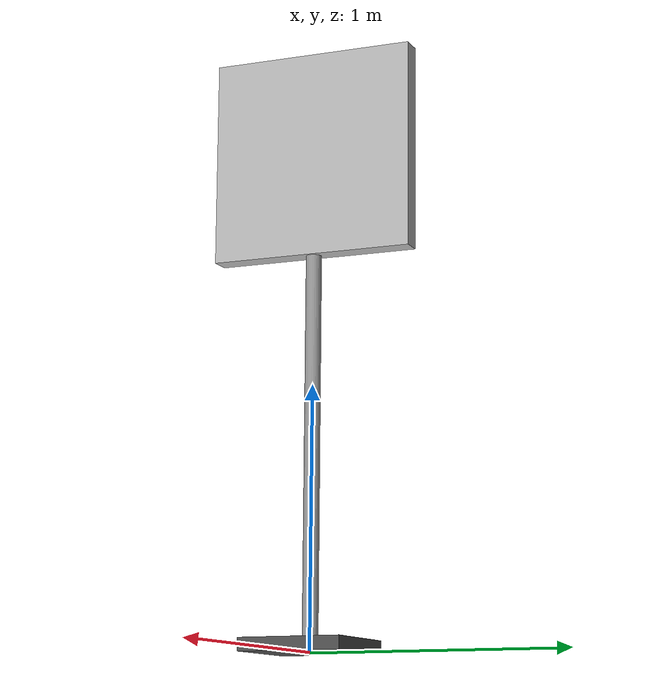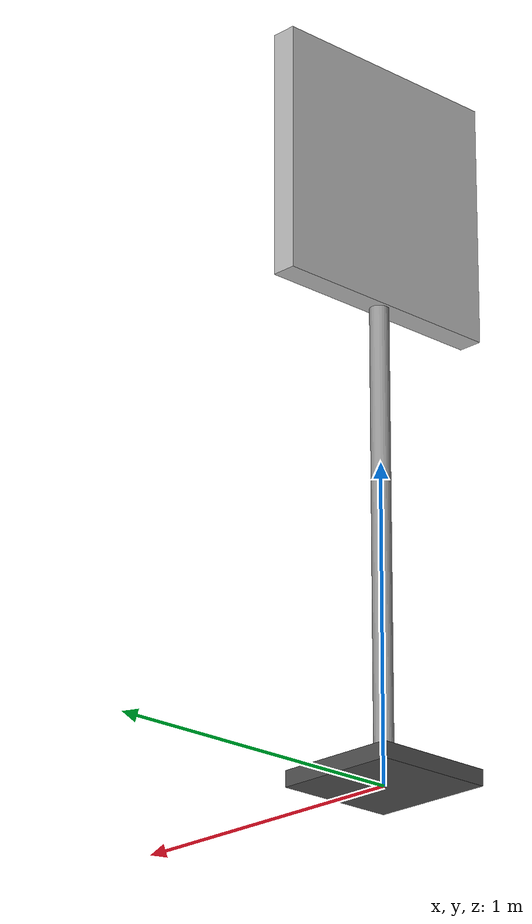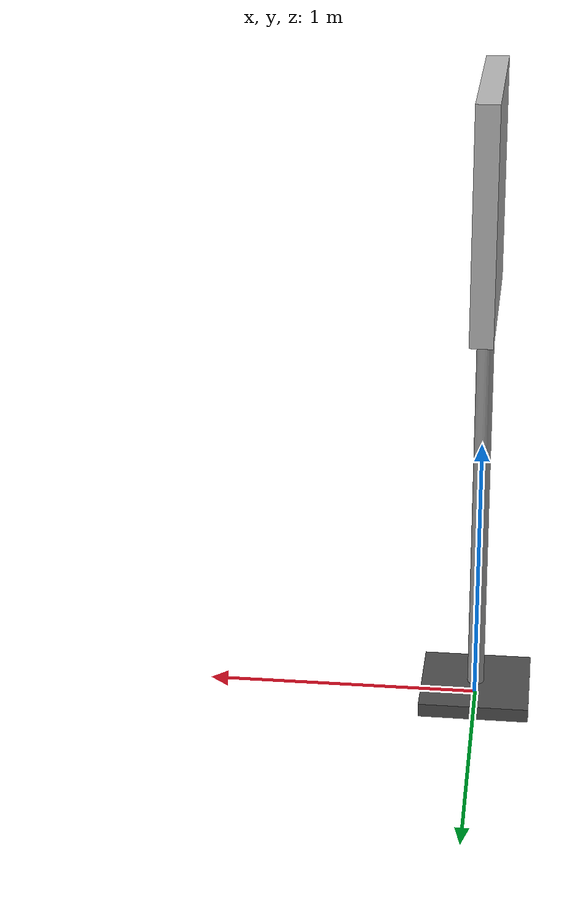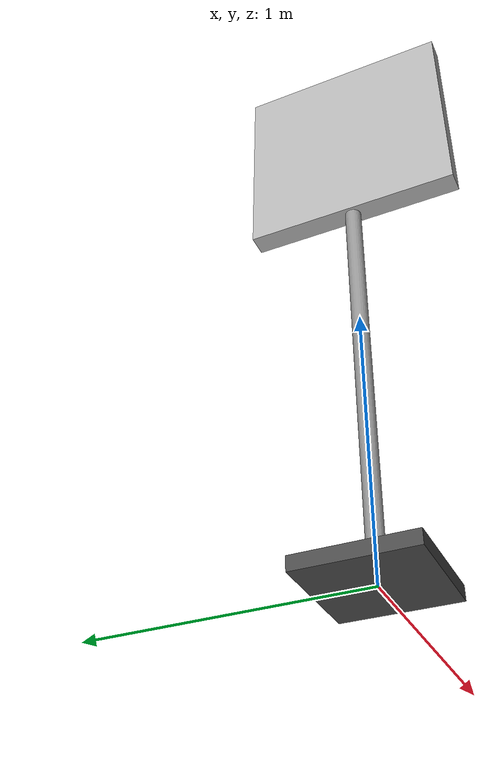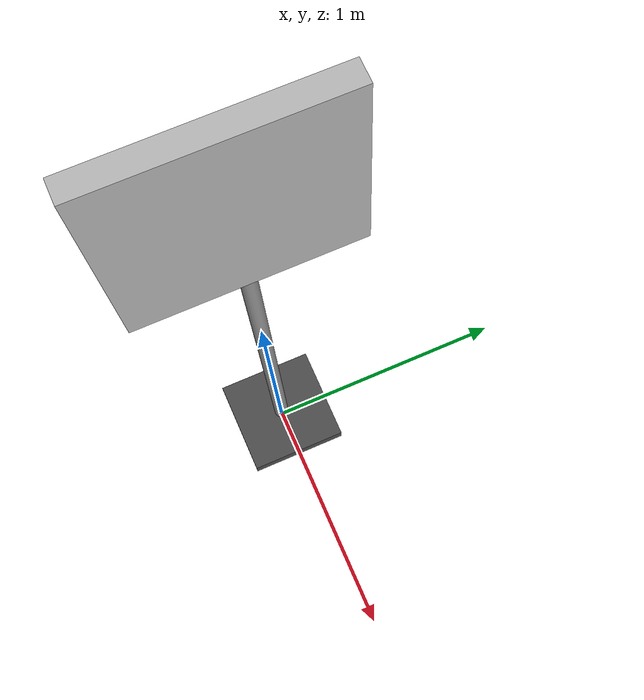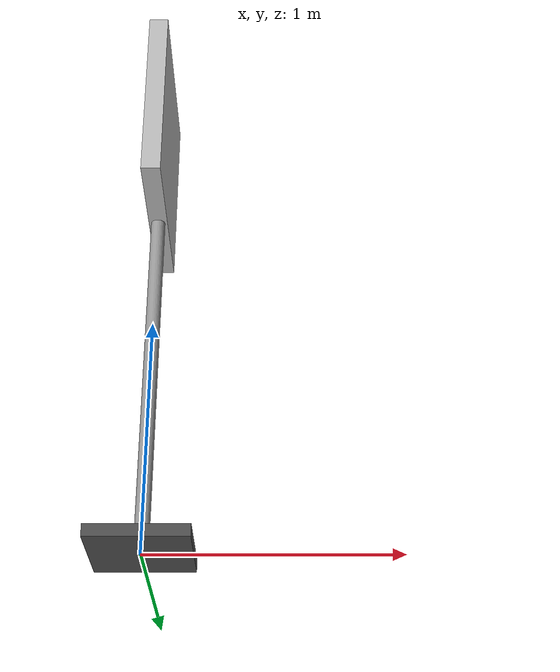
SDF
<?xml version='1.0'?>
<sdf version='1.7'>
  <model name='speedLimit20Sign'>
    <static>1</static>
    <link name='link'>
      <!-- Base -->
      <visual name='base'>
        <pose>0 0 0.025 0 0 0</pose>
        <geometry>
          <box>
            <size>0.4 0.4 0.05</size>
          </box>
        </geometry>
        <material>
          <script>
            <uri>package://gazebo/media/materials/scripts/gazebo.material</uri>
            <name>Gazebo/DarkGrey</name>
          </script>
        </material>
      </visual>
      <collision name='base_collision'>
        <pose>0 0 0.025 0 0 0</pose>
        <geometry>
          <box>
            <size>0.4 0.4 0.05</size>
          </box>
        </geometry>
      </collision>

      <!-- Stand -->
      <visual name='stand'>
        <pose>0 0 0.975 0 0 0</pose>
        <geometry>
          <cylinder>
            <radius>0.03</radius>
            <length>1.85</length>
          </cylinder>
        </geometry>
        <material>
          <script>
            <uri>package://gazebo/media/materials/scripts/gazebo.material</uri>
            <name>Gazebo/Grey</name>
          </script>
        </material>
      </visual>
      <collision name='stand_collision'>
        <pose>0 0 0.975 0 0 0</pose>
        <geometry>
          <cylinder>
            <radius>0.03</radius>
            <length>1.85</length>
          </cylinder>
        </geometry>
      </collision>

      <!-- Sign face -->
      <visual name='sign'>
        <pose>0 0 1.9 0 0 0</pose>
        <geometry>
          <box>
            <size>0.08 0.8 0.8</size>
          </box>
        </geometry>
        <material>
          <script>
            <uri>model://speedLimit20Sign/materials/scripts</uri>
            <uri>model://speedLimit20Sign/materials/textures</uri>
            <name>speedLimit20Sign/Diffuse</name>
          </script>
        </material>
      </visual>
      <collision name='sign_collision'>
        <pose>0 0 1.9 0 0 0</pose>
        <geometry>
          <box>
            <size>0.08 0.8 0.8</size>
          </box>
        </geometry>
      </collision>
    </link>
  </model>
</sdf>
